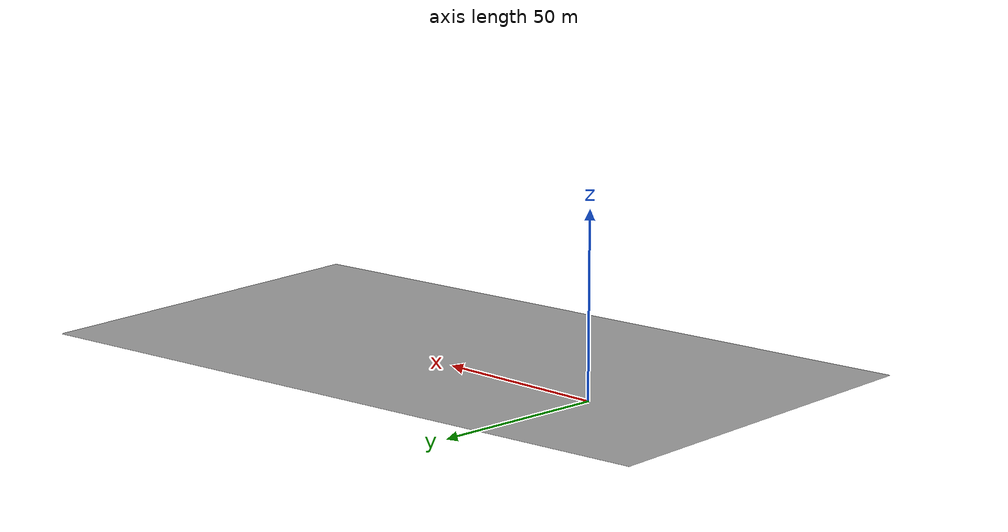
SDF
<?xml version="1.0" ?>
<sdf version="1.8">
    <world name="car_world">
        <gui fullscreen="0">
        <plugin filename="GzScene3D" name="3D View">
            <camera_pose>0.4845 5.5579 3.3651 0.0 0.308 -1.548</camera_pose>
            <ignition-gui>
            <title>3D View</title>
            <property type="bool" key="showTitleBar">true</property>
            <property type="string" key="state">docked</property>
            </ignition-gui>
        </plugin>
        <plugin filename="Teleop" name="ignition::gui::plugins::Teleop">
            <topic>/cmd_vel</topic>
            <ignition-gui>
            <property type="bool" key="showTitleBar">true</property>
            <property type="string" key="state">docked</property>
            <property key="resizable" type="bool">true</property>
            </ignition-gui>
        </plugin>
        <plugin filename="ImageDisplay" name="ignition::gui::plugins::ImageDisplay">
            <topic>/image_raw</topic>
        </plugin>
        </gui>

        <physics name="1ms" type="ignored">
            <max_step_size>0.001</max_step_size>
            <real_time_factor>1.0</real_time_factor>
            <gravity>0 0 -9.8</gravity>
        </physics>
        <plugin
            filename="libignition-gazebo-physics-system.so"
            name="ignition::gazebo::systems::Physics">
        </plugin>
        <plugin
            filename="libignition-gazebo-user-commands-system.so"
            name="ignition::gazebo::systems::UserCommands">
        </plugin>
        <plugin
            filename="libignition-gazebo-scene-broadcaster-system.so"
            name="ignition::gazebo::systems::SceneBroadcaster">
        </plugin>
        <plugin
            filename="ignition-gazebo-navsat-system"
            name="ignition::gazebo::systems::NavSat">
        </plugin>

        <light type="directional" name="sun">
            <cast_shadows>true</cast_shadows>
            <pose>0 0 10 0 0 0</pose>
            <diffuse>0.8 0.8 0.8 1</diffuse>
            <specular>0.2 0.2 0.2 1</specular>
            <attenuation>
                <range>1000</range>
                <constant>0.9</constant>
                <linear>0.01</linear>
                <quadratic>0.001</quadratic>
            </attenuation>
            <direction>-0.5 0.1 -0.9</direction>
        </light>

        <model name="ground_plane">
        <static>true</static>
        <link name="link">
            <collision name="collision">
                <geometry>
                <plane>
                <normal>0 0 1</normal>
                </plane>
                </geometry>
            </collision>
            <visual name="visual">
                <geometry>
                    <mesh>
                      <uri>package://simulator/world/meshes/shihou_world.dae</uri>
                    <scale>1 1 1</scale>
                    </mesh>
                </geometry>
            </visual>
        </link>
        </model>

    <!-- 用調整 -->

        <spherical_coordinates>
            <surface_model>EARTH_WGS84</surface_model>
            <world_frame_orientation>ENU</world_frame_orientation>
            <latitude_deg>36.11339585571819</latitude_deg>
            <longitude_deg>139.9815010597697</longitude_deg>
            <elevation>0</elevation>
            <heading_deg>0</heading_deg>
        </spherical_coordinates>

    </world>
</sdf>
